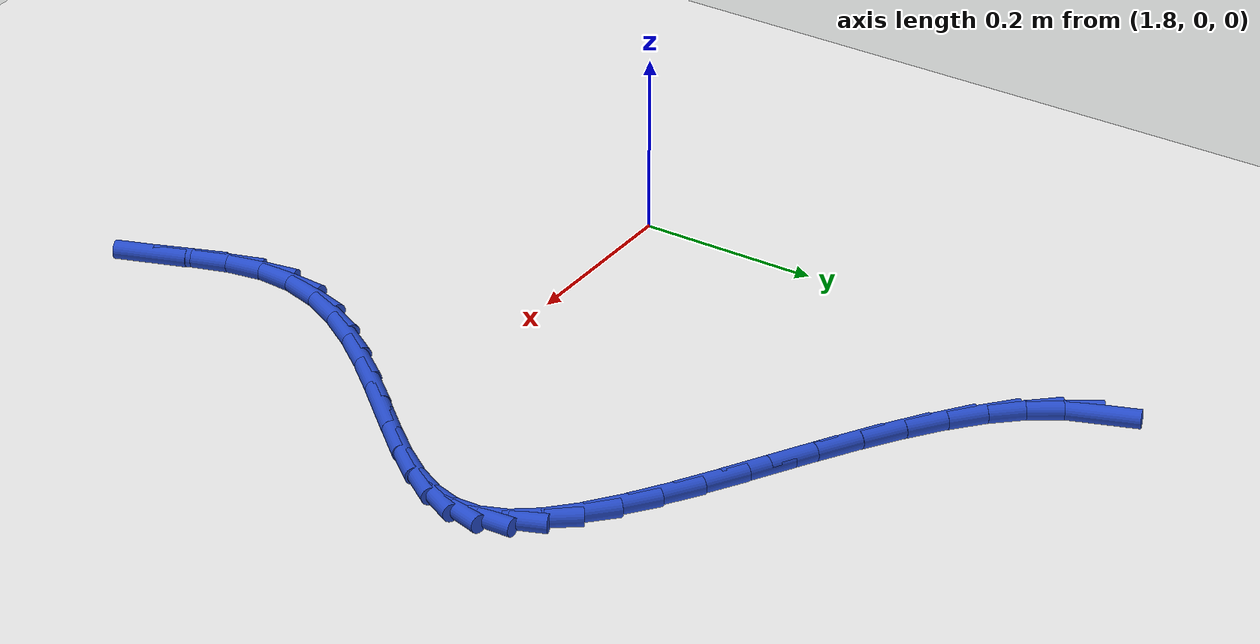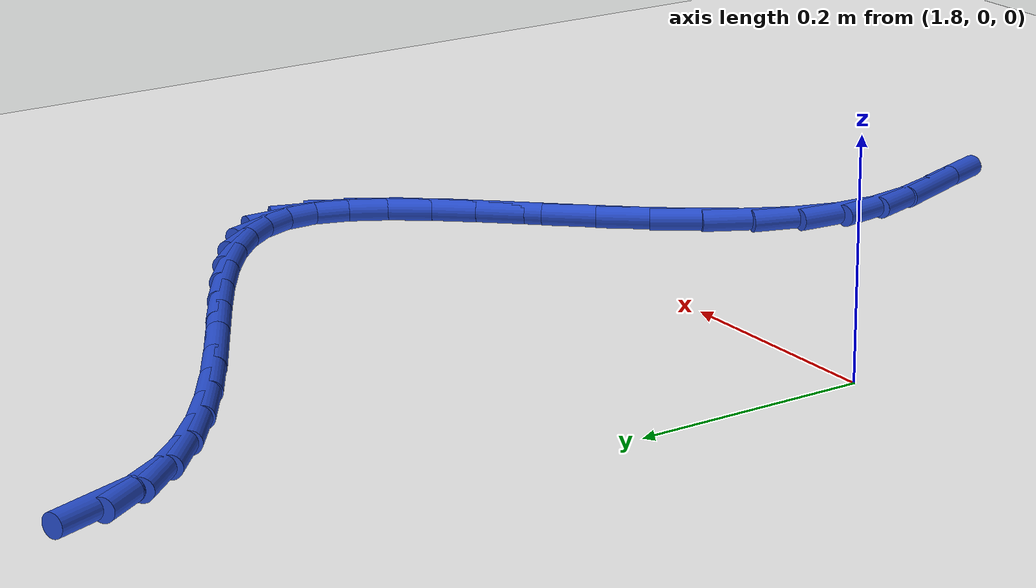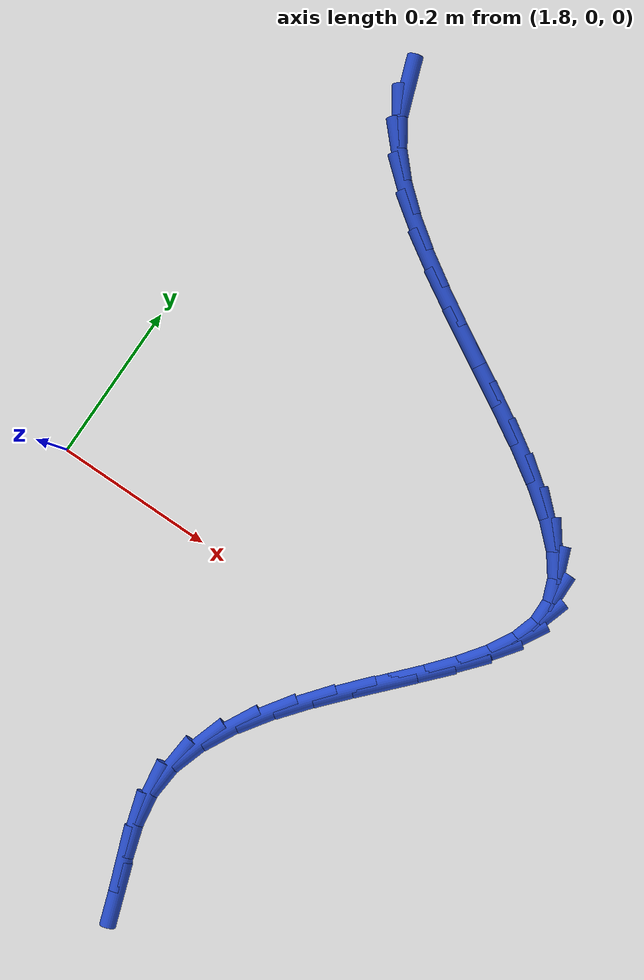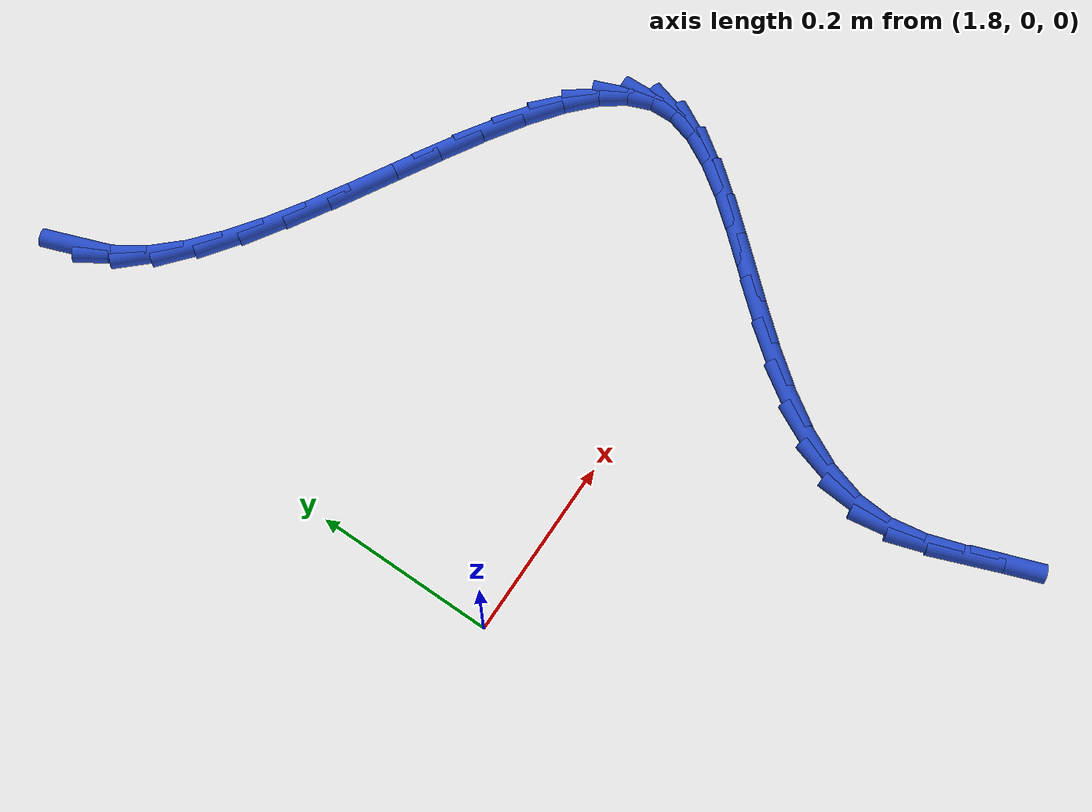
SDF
<sdf version="1.6">
 <world name="default">
  <model name="ground_plane">
   <static>1</static>
   <link name="link">
    <collision name="collision">
     <geometry><plane><normal>0 0 1</normal><size>100 100</size></plane></geometry>
     <surface><friction><ode><mu>100</mu><mu2>50</mu2></ode></friction></surface>
    </collision>
    <visual name="visual">
     <cast_shadows>0</cast_shadows>
     <geometry><plane><normal>0 0 1</normal><size>100 100</size></plane></geometry>
     <material>
      <script><uri>file://media/materials/scripts/gazebo.material</uri><name>Gazebo/WhiteGlow</name></script>
     </material>
    </visual>
   </link>
  </model>
  <model name="line">
   <link name="link_84">
    <pose>1.89116416526539 0.5984970960822681 0.01 0 1.57 -1.2204454963079903</pose>
    <collision name="collision">
     <geometry><cylinder><radius>0.01</radius><length>0.08</length></cylinder></geometry>
    </collision>
    <visual name="visual">
     <material>
      <script><name>Gazebo/Blue</name><uri>file://media/materials/scripts/gazebo.material</uri></script>
     </material>
     <geometry><cylinder><radius>0.01</radius><length>0.08</length></cylinder></geometry>
    </visual>
   </link>
   <link name="link_85">
    <pose>1.9041644167840388 0.5629215017216694 0.01 0 1.57 -0.9913584666370526</pose>
    <collision name="collision">
     <geometry><cylinder><radius>0.01</radius><length>0.08</length></cylinder></geometry>
    </collision>
    <visual name="visual">
     <material>
      <script><name>Gazebo/Blue</name><uri>file://media/materials/scripts/gazebo.material</uri></script>
     </material>
     <geometry><cylinder><radius>0.01</radius><length>0.08</length></cylinder></geometry>
    </visual>
   </link>
   <link name="link_86">
    <pose>1.9260573185859673 0.5294648048019757 0.01 0 1.57 -0.8212145996162292</pose>
    <collision name="collision">
     <geometry><cylinder><radius>0.01</radius><length>0.08</length></cylinder></geometry>
    </collision>
    <visual name="visual">
     <material>
      <script><name>Gazebo/Blue</name><uri>file://media/materials/scripts/gazebo.material</uri></script>
     </material>
     <geometry><cylinder><radius>0.01</radius><length>0.08</length></cylinder></geometry>
    </visual>
   </link>
   <link name="link_87">
    <pose>1.9554513372492857 0.49788602343852684 0.01 0 1.57 -0.7006188100497215</pose>
    <collision name="collision">
     <geometry><cylinder><radius>0.01</radius><length>0.08</length></cylinder></geometry>
    </collision>
    <visual name="visual">
     <material>
      <script><name>Gazebo/Blue</name><uri>file://media/materials/scripts/gazebo.material</uri></script>
     </material>
     <geometry><cylinder><radius>0.01</radius><length>0.08</length></cylinder></geometry>
    </visual>
   </link>
   <link name="link_88">
    <pose>1.9909549393521049 0.46794417574666436 0.01 0 1.57 -0.6172161538614971</pose>
    <collision name="collision">
     <geometry><cylinder><radius>0.01</radius><length>0.08</length></cylinder></geometry>
    </collision>
    <visual name="visual">
     <material>
      <script><name>Gazebo/Blue</name><uri>file://media/materials/scripts/gazebo.material</uri></script>
     </material>
     <geometry><cylinder><radius>0.01</radius><length>0.08</length></cylinder></geometry>
    </visual>
   </link>
   <link name="link_89">
    <pose>2.0311765914725335 0.4393982798417286 0.01 0 1.57 -0.5614562006738169</pose>
    <collision name="collision">
     <geometry><cylinder><radius>0.01</radius><length>0.08</length></cylinder></geometry>
    </collision>
    <visual name="visual">
     <material>
      <script><name>Gazebo/Blue</name><uri>file://media/materials/scripts/gazebo.material</uri></script>
     </material>
     <geometry><cylinder><radius>0.01</radius><length>0.08</length></cylinder></geometry>
    </visual>
   </link>
   <link name="link_90">
    <pose>2.0747247601886825 0.4120073538390606 0.01 0 1.57 -0.5271733754649587</pose>
    <collision name="collision">
     <geometry><cylinder><radius>0.01</radius><length>0.08</length></cylinder></geometry>
    </collision>
    <visual name="visual">
     <material>
      <script><name>Gazebo/Blue</name><uri>file://media/materials/scripts/gazebo.material</uri></script>
     </material>
     <geometry><cylinder><radius>0.01</radius><length>0.08</length></cylinder></geometry>
    </visual>
   </link>
   <link name="link_91">
    <pose>2.1202079120786625 0.3855304158540009 0.01 0 1.57 -0.5109684221987678</pose>
    <collision name="collision">
     <geometry><cylinder><radius>0.01</radius><length>0.08</length></cylinder></geometry>
    </collision>
    <visual name="visual">
     <material>
      <script><name>Gazebo/Blue</name><uri>file://media/materials/scripts/gazebo.material</uri></script>
     </material>
     <geometry><cylinder><radius>0.01</radius><length>0.08</length></cylinder></geometry>
    </visual>
   </link>
   <link name="link_92">
    <pose>2.166234513720583 0.3597264840018902 0.01 0 1.57 -0.5116996604804317</pose>
    <collision name="collision">
     <geometry><cylinder><radius>0.01</radius><length>0.08</length></cylinder></geometry>
    </collision>
    <visual name="visual">
     <material>
      <script><name>Gazebo/Blue</name><uri>file://media/materials/scripts/gazebo.material</uri></script>
     </material>
     <geometry><cylinder><radius>0.01</radius><length>0.08</length></cylinder></geometry>
    </visual>
   </link>
   <link name="link_93">
    <pose>2.211413031692553 0.3343545763980694 0.01 0 1.57 -0.5303853637165998</pose>
    <collision name="collision">
     <geometry><cylinder><radius>0.01</radius><length>0.08</length></cylinder></geometry>
    </collision>
    <visual name="visual">
     <material>
      <script><name>Gazebo/Blue</name><uri>file://media/materials/scripts/gazebo.material</uri></script>
     </material>
     <geometry><cylinder><radius>0.01</radius><length>0.08</length></cylinder></geometry>
    </visual>
   </link>
   <link name="link_94">
    <pose>2.2543519325726837 0.30917371115787906 0.01 0 1.57 -0.5706447908361542</pose>
    <collision name="collision">
     <geometry><cylinder><radius>0.01</radius><length>0.08</length></cylinder></geometry>
    </collision>
    <visual name="visual">
     <material>
      <script><name>Gazebo/Blue</name><uri>file://media/materials/scripts/gazebo.material</uri></script>
     </material>
     <geometry><cylinder><radius>0.01</radius><length>0.08</length></cylinder></geometry>
    </visual>
   </link>
   <link name="link_95">
    <pose>2.293659682939085 0.2839429063966598 0.01 0 1.57 -0.6399060140706834</pose>
    <collision name="collision">
     <geometry><cylinder><radius>0.01</radius><length>0.08</length></cylinder></geometry>
    </collision>
    <visual name="visual">
     <material>
      <script><name>Gazebo/Blue</name><uri>file://media/materials/scripts/gazebo.material</uri></script>
     </material>
     <geometry><cylinder><radius>0.01</radius><length>0.08</length></cylinder></geometry>
    </visual>
   </link>
   <link name="link_96">
    <pose>2.327944749369867 0.2584211802297527 0.01 0 1.57 -0.7517115663660293</pose>
    <collision name="collision">
     <geometry><cylinder><radius>0.01</radius><length>0.08</length></cylinder></geometry>
    </collision>
    <visual name="visual">
     <material>
      <script><name>Gazebo/Blue</name><uri>file://media/materials/scripts/gazebo.material</uri></script>
     </material>
     <geometry><cylinder><radius>0.01</radius><length>0.08</length></cylinder></geometry>
    </visual>
   </link>
   <link name="link_97">
    <pose>2.3558155984431397 0.23236755077249818 0.01 0 1.57 -0.9286035691986613</pose>
    <collision name="collision">
     <geometry><cylinder><radius>0.01</radius><length>0.08</length></cylinder></geometry>
    </collision>
    <visual name="visual">
     <material>
      <script><name>Gazebo/Blue</name><uri>file://media/materials/scripts/gazebo.material</uri></script>
     </material>
     <geometry><cylinder><radius>0.01</radius><length>0.08</length></cylinder></geometry>
    </visual>
   </link>
   <link name="link_98">
    <pose>2.375880696737013 0.20554103614023772 0.01 0 1.57 -1.1986264873676709</pose>
    <collision name="collision">
     <geometry><cylinder><radius>0.01</radius><length>0.08</length></cylinder></geometry>
    </collision>
    <visual name="visual">
     <material>
      <script><name>Gazebo/Blue</name><uri>file://media/materials/scripts/gazebo.material</uri></script>
     </material>
     <geometry><cylinder><radius>0.01</radius><length>0.08</length></cylinder></geometry>
    </visual>
   </link>
   <link name="link_99">
    <pose>2.386748510829597 0.17770065444831087 0.01 0 1.57 -1.5560571346839944</pose>
    <collision name="collision">
     <geometry><cylinder><radius>0.01</radius><length>0.08</length></cylinder></geometry>
    </collision>
    <visual name="visual">
     <material>
      <script><name>Gazebo/Blue</name><uri>file://media/materials/scripts/gazebo.material</uri></script>
     </material>
     <geometry><cylinder><radius>0.01</radius><length>0.08</length></cylinder></geometry>
    </visual>
   </link>
   <link name="link_100">
    <pose>2.3871771651647458 0.14862013967898033 0.01 0 1.57 1.268723361209941</pose>
    <collision name="collision">
     <geometry><cylinder><radius>0.01</radius><length>0.08</length></cylinder></geometry>
    </collision>
    <visual name="visual">
     <material>
      <script><name>Gazebo/Blue</name><uri>file://media/materials/scripts/gazebo.material</uri></script>
     </material>
     <geometry><cylinder><radius>0.01</radius><length>0.08</length></cylinder></geometry>
    </visual>
   </link>
   <link name="link_101">
    <pose>2.377713270984884 0.1182490878287614 0.01 0 1.57 1.0617903407687619</pose>
    <collision name="collision">
     <geometry><cylinder><radius>0.01</radius><length>0.08</length></cylinder></geometry>
    </collision>
    <visual name="visual">
     <material>
      <script><name>Gazebo/Blue</name><uri>file://media/materials/scripts/gazebo.material</uri></script>
     </material>
     <geometry><cylinder><radius>0.01</radius><length>0.08</length></cylinder></geometry>
    </visual>
   </link>
   <link name="link_102">
    <pose>2.360080862603273 0.08665287097539645 0.01 0 1.57 0.9373212739125154</pose>
    <collision name="collision">
     <geometry><cylinder><radius>0.01</radius><length>0.08</length></cylinder></geometry>
    </collision>
    <visual name="visual">
     <material>
      <script><name>Gazebo/Blue</name><uri>file://media/materials/scripts/gazebo.material</uri></script>
     </material>
     <geometry><cylinder><radius>0.01</radius><length>0.08</length></cylinder></geometry>
    </visual>
   </link>
   <link name="link_103">
    <pose>2.3360246842503707 0.0538988976040289 0.01 0 1.57 0.8668594878361183</pose>
    <collision name="collision">
     <geometry><cylinder><radius>0.01</radius><length>0.08</length></cylinder></geometry>
    </collision>
    <visual name="visual">
     <material>
      <script><name>Gazebo/Blue</name><uri>file://media/materials/scripts/gazebo.material</uri></script>
     </material>
     <geometry><cylinder><radius>0.01</radius><length>0.08</length></cylinder></geometry>
    </visual>
   </link>
   <link name="link_104">
    <pose>2.307289480156635 0.02005457619980225 0.01 0 1.57 0.8334215017022062</pose>
    <collision name="collision">
     <geometry><cylinder><radius>0.01</radius><length>0.08</length></cylinder></geometry>
    </collision>
    <visual name="visual">
     <material>
      <script><name>Gazebo/Blue</name><uri>file://media/materials/scripts/gazebo.material</uri></script>
     </material>
     <geometry><cylinder><radius>0.01</radius><length>0.08</length></cylinder></geometry>
    </visual>
   </link>
   <link name="link_105">
    <pose>2.2756199945525233 -0.01481268475213941 0.01 0 1.57 0.8285235753655876</pose>
    <collision name="collision">
     <geometry><cylinder><radius>0.01</radius><length>0.08</length></cylinder></geometry>
    </collision>
    <visual name="visual">
     <material>
      <script><name>Gazebo/Blue</name><uri>file://media/materials/scripts/gazebo.material</uri></script>
     </material>
     <geometry><cylinder><radius>0.01</radius><length>0.08</length></cylinder></geometry>
    </visual>
   </link>
   <link name="link_106">
    <pose>2.2427609716684938 -0.0506354767666541 0.01 0 1.57 0.8491689391609892</pose>
    <collision name="collision">
     <geometry><cylinder><radius>0.01</radius><length>0.08</length></cylinder></geometry>
    </collision>
    <visual name="visual">
     <material>
      <script><name>Gazebo/Blue</name><uri>file://media/materials/scripts/gazebo.material</uri></script>
     </material>
     <geometry><cylinder><radius>0.01</radius><length>0.08</length></cylinder></geometry>
    </visual>
   </link>
   <link name="link_107">
    <pose>2.210457155735002 -0.0873463913585976 0.01 0 1.57 0.8964037764036563</pose>
    <collision name="collision">
     <geometry><cylinder><radius>0.01</radius><length>0.08</length></cylinder></geometry>
    </collision>
    <visual name="visual">
     <material>
      <script><name>Gazebo/Blue</name><uri>file://media/materials/scripts/gazebo.material</uri></script>
     </material>
     <geometry><cylinder><radius>0.01</radius><length>0.08</length></cylinder></geometry>
    </visual>
   </link>
   <link name="link_108">
    <pose>2.1804532909825074 -0.1248780200428265 0.01 0 1.57 0.9749530563876075</pose>
    <collision name="collision">
     <geometry><cylinder><radius>0.01</radius><length>0.08</length></cylinder></geometry>
    </collision>
    <visual name="visual">
     <material>
      <script><name>Gazebo/Blue</name><uri>file://media/materials/scripts/gazebo.material</uri></script>
     </material>
     <geometry><cylinder><radius>0.01</radius><length>0.08</length></cylinder></geometry>
    </visual>
   </link>
   <link name="link_109">
    <pose>2.154494121641469 -0.16316295433419742 0.01 0 1.57 1.0931998869406676</pose>
    <collision name="collision">
     <geometry><cylinder><radius>0.01</radius><length>0.08</length></cylinder></geometry>
    </collision>
    <visual name="visual">
     <material>
      <script><name>Gazebo/Blue</name><uri>file://media/materials/scripts/gazebo.material</uri></script>
     </material>
     <geometry><cylinder><radius>0.01</radius><length>0.08</length></cylinder></geometry>
    </visual>
   </link>
   <link name="link_110">
    <pose>2.1343243919423425 -0.2021337857475668 0.01 0 1.57 1.2618505342738444</pose>
    <collision name="collision">
     <geometry><cylinder><radius>0.01</radius><length>0.08</length></cylinder></geometry>
    </collision>
    <visual name="visual">
     <material>
      <script><name>Gazebo/Blue</name><uri>file://media/materials/scripts/gazebo.material</uri></script>
     </material>
     <geometry><cylinder><radius>0.01</radius><length>0.08</length></cylinder></geometry>
    </visual>
   </link>
   <link name="link_111">
    <pose>2.1216888461155863 -0.24172310579779135 0.01 0 1.57 1.4873342575169683</pose>
    <collision name="collision">
     <geometry><cylinder><radius>0.01</radius><length>0.08</length></cylinder></geometry>
    </collision>
    <visual name="visual">
     <material>
      <script><name>Gazebo/Blue</name><uri>file://media/materials/scripts/gazebo.material</uri></script>
     </material>
     <geometry><cylinder><radius>0.01</radius><length>0.08</length></cylinder></geometry>
    </visual>
   </link>
   <link name="link_112">
    <pose>2.1183308499970526 -0.28186343960520477 0.01 0 1.57 -1.4150505301382823</pose>
    <collision name="collision">
     <geometry><cylinder><radius>0.01</radius><length>0.08</length></cylinder></geometry>
    </collision>
    <visual name="visual">
     <material>
      <script><name>Gazebo/Blue</name><uri>file://media/materials/scripts/gazebo.material</uri></script>
     </material>
     <geometry><cylinder><radius>0.01</radius><length>0.08</length></cylinder></geometry>
    </visual>
   </link>
   <link name="link_113">
    <pose>2.1246997189865677 -0.32242498045888146 0.01 0 1.57 -1.2648171659036167</pose>
    <collision name="collision">
     <geometry><cylinder><radius>0.01</radius><length>0.08</length></cylinder></geometry>
    </collision>
    <visual name="visual">
     <material>
      <script><name>Gazebo/Blue</name><uri>file://media/materials/scripts/gazebo.material</uri></script>
     </material>
     <geometry><cylinder><radius>0.01</radius><length>0.08</length></cylinder></geometry>
    </visual>
   </link>
   <link name="link_114">
    <pose>2.1375489165708284 -0.36309989982478236 0.01 0 1.57 -1.2064211673489724</pose>
    <collision name="collision">
     <geometry><cylinder><radius>0.01</radius><length>0.08</length></cylinder></geometry>
    </collision>
    <visual name="visual">
     <material>
      <script><name>Gazebo/Blue</name><uri>file://media/materials/scripts/gazebo.material</uri></script>
     </material>
     <geometry><cylinder><radius>0.01</radius><length>0.08</length></cylinder></geometry>
    </visual>
   </link>
   <link name="link_115">
    <pose>2.152976373413753 -0.4035487934588669 0.01 0 1.57 -1.2308989544645683</pose>
    <collision name="collision">
     <geometry><cylinder><radius>0.01</radius><length>0.08</length></cylinder></geometry>
    </collision>
    <visual name="visual">
     <material>
      <script><name>Gazebo/Blue</name><uri>file://media/materials/scripts/gazebo.material</uri></script>
     </material>
     <geometry><cylinder><radius>0.01</radius><length>0.08</length></cylinder></geometry>
    </visual>
   </link>
  </model>
 </world>
</sdf>
